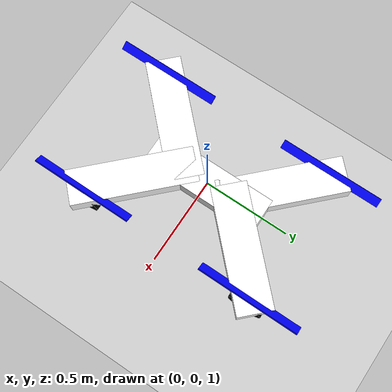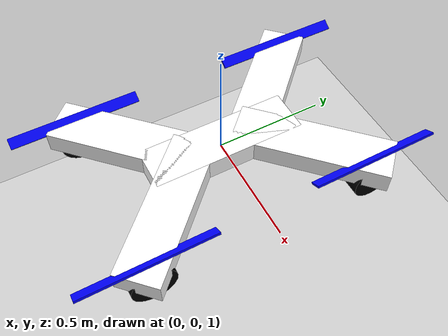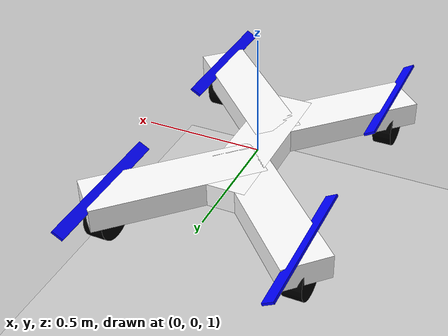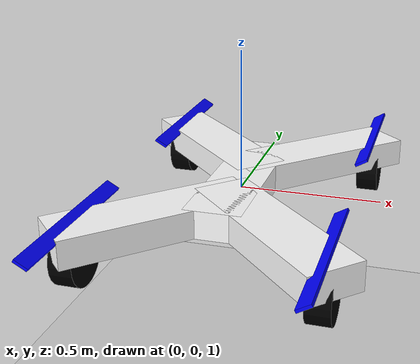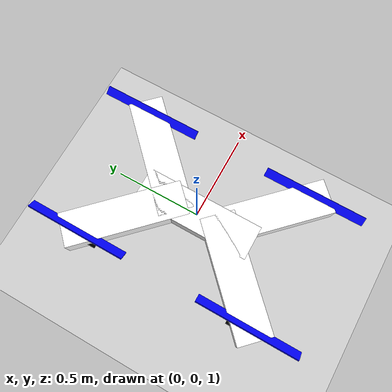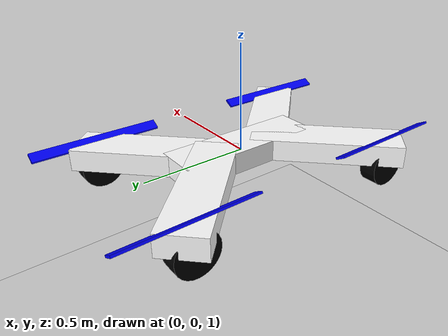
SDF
<?xml version="1.0" ?>
<sdf version="1.8">
  <world name="demo">

    <light name="sun" type="directional">
      <cast_shadows>true</cast_shadows>
      <pose>0 0 10 0 0 0</pose>
      <diffuse>0.8 0.8 0.8 1</diffuse>
      <specular>0.2 0.2 0.2 1</specular>
      <attenuation>
        <range>1000</range>
        <constant>0.9</constant>
        <linear>0.01</linear>
        <quadratic>0.001</quadratic>
      </attenuation>
      <direction>-0.5 0.1 -0.9</direction>
    </light>

    <model name="ground_plane">
      <static>true</static>
      <link name="link">
        <collision name="collision">
          <geometry>
            <plane>
              <normal>0 0 1</normal>
              <size>100 100</size>
            </plane>
          </geometry>
        </collision>
        <visual name="visual">
          <geometry>
            <plane>
              <normal>0 0 1</normal>
              <size>100 100</size>
            </plane>
          </geometry>
          <material>
            <ambient>0.8 0.8 0.8 1</ambient>
            <diffuse>0.8 0.8 0.8 1</diffuse>
            <specular>0.8 0.8 0.8 1</specular>
          </material>
        </visual>
      </link>
    </model>

    <model name="physics">
      <self_collide>true</self_collide>
      <pose>0 0 1 0 0 0</pose>
      <include merge="true">
        <uri>package://crispr/models/vehicle</uri>
      </include>

      <plugin
        filename="gz-sim-joint-state-publisher-system"
        name="gz::sim::systems::JointStatePublisher">
      </plugin>

      <plugin
        filename="gz-sim-pose-publisher-system"
        name="gz::sim::systems::PosePublisher">
        <publish_link_pose>true</publish_link_pose>
        <use_pose_vector_msg>true</use_pose_vector_msg>
        <static_publisher>true</static_publisher>
        <static_update_frequency>1</static_update_frequency>
      </plugin>

      <plugin
        filename="gz-sim-odometry-publisher-system"
        name="gz::sim::systems::OdometryPublisher">
        <odom_frame>vehicle/odom</odom_frame>
        <robot_base_frame>vehicle</robot_base_frame>
      </plugin>

    </model>
  </world>
</sdf>

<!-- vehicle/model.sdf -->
<sdf version='1.9'>
  <model name='physics'>
    <link name='base_link'>
      <inertial>
        <pose>0 0 0 0 0 0</pose>
        <mass>2.3999999999999999</mass>
        <inertia>
          <ixx>5.0489999999999986</ixx>
          <ixy>0</ixy>
          <ixz>0</ixz>
          <iyy>5.016</iyy>
          <iyz>0</iyz>
          <izz>5.0650000000000013</izz>
        </inertia>
      </inertial>
      <collision name='base_link_collision'>
        <pose>0 0 0 0 0 0</pose>
        <geometry>
          <box>
            <size>0.20000000000000001 0.69999999999999996 0.10000000000000001</size>
          </box>
        </geometry>
      </collision>
      <collision name='base_link_fixed_joint_lump__wing_backward_left_collision_1'>
        <pose>0.20000000000000001 -0.34999999999999998 0 0 0 0</pose>
        <geometry>
          <box>
            <size>0.20000000000000001 0.69999999999999996 0.10000000000000001</size>
          </box>
        </geometry>
      </collision>
      <collision name='base_link_fixed_joint_lump__wing_backward_right_collision_2'>
        <pose>-0.20000000000000001 -0.34999999999999998 0 0 0 0</pose>
        <geometry>
          <box>
            <size>0.20000000000000001 0.69999999999999996 0.10000000000000001</size>
          </box>
        </geometry>
      </collision>
      <collision name='base_link_fixed_joint_lump__wing_forward_left_collision_3'>
        <pose>0.20000000000000001 0.34999999999999998 0 0 0 0</pose>
        <geometry>
          <box>
            <size>0.20000000000000001 0.69999999999999996 0.10000000000000001</size>
          </box>
        </geometry>
      </collision>
      <collision name='base_link_fixed_joint_lump__wing_forward_right_collision_4'>
        <pose>-0.20000000000000001 0.34999999999999998 0 0 0 0</pose>
        <geometry>
          <box>
            <size>0.20000000000000001 0.69999999999999996 0.10000000000000001</size>
          </box>
        </geometry>
      </collision>
      <visual name='base_link_visual'>
        <pose>0 0 0 0 0 0</pose>
        <geometry>
          <box>
            <size>0.20000000000000001 0.69999999999999996 0.10000000000000001</size>
          </box>
        </geometry>
        <material>
          <diffuse>1 1 1 1</diffuse>
          <ambient>1 1 1 1</ambient>
        </material>
      </visual>
      <visual name='base_link_fixed_joint_lump__wing_backward_left_visual_1'>
        <pose>0.20000000000000001 -0.34999999999999998 0 0 0 -2.358185307179586</pose>
        <geometry>
          <box>
            <size>0.20000000000000001 0.69999999999999996 0.10000000000000001</size>
          </box>
        </geometry>
        <material>
          <diffuse>1 1 1 1</diffuse>
          <ambient>1 1 1 1</ambient>
        </material>
      </visual>
      <visual name='base_link_fixed_joint_lump__wing_backward_right_visual_2'>
        <pose>-0.20000000000000001 -0.34999999999999998 0 0 0 2.355</pose>
        <geometry>
          <box>
            <size>0.20000000000000001 0.69999999999999996 0.10000000000000001</size>
          </box>
        </geometry>
        <material>
          <diffuse>1 1 1 1</diffuse>
          <ambient>1 1 1 1</ambient>
        </material>
      </visual>
      <visual name='base_link_fixed_joint_lump__wing_forward_left_visual_3'>
        <pose>0.20000000000000001 0.34999999999999998 0 0 0 -0.78818530717958624</pose>
        <geometry>
          <box>
            <size>0.20000000000000001 0.69999999999999996 0.10000000000000001</size>
          </box>
        </geometry>
        <material>
          <diffuse>1 1 1 1</diffuse>
          <ambient>1 1 1 1</ambient>
        </material>
      </visual>
      <visual name='base_link_fixed_joint_lump__wing_forward_right_visual_4'>
        <pose>-0.20000000000000001 0.34999999999999998 0 0 0 0.78500000000000025</pose>
        <geometry>
          <box>
            <size>0.20000000000000001 0.69999999999999996 0.10000000000000001</size>
          </box>
        </geometry>
        <material>
          <diffuse>1 1 1 1</diffuse>
          <ambient>1 1 1 1</ambient>
        </material>
      </visual>
    </link>
    <joint name='propeller_backward_left_joint' type='revolute'>
      <pose relative_to='base_link'>0.40000000000000002 -0.52499999999999991 0.050000000000000003 0 0 0</pose>
      <parent>base_link</parent>
      <child>propeller_backward_left</child>
      <axis>
        <xyz>0 0 1</xyz>
        <limit>
          <lower>-inf</lower>
          <upper>inf</upper>
        </limit>
        <dynamics>
          <spring_reference>0</spring_reference>
          <spring_stiffness>0</spring_stiffness>
        </dynamics>
      </axis>
    </joint>
    <link name='propeller_backward_left'>
      <pose relative_to='propeller_backward_left_joint'>0 0 0 0 0 0</pose>
      <inertial>
        <pose>0 0 0 0 0 0</pose>
        <mass>0.01</mass>
        <inertia>
          <ixx>1</ixx>
          <ixy>0</ixy>
          <ixz>0</ixz>
          <iyy>1</iyy>
          <iyz>0</iyz>
          <izz>1</izz>
        </inertia>
      </inertial>
      <collision name='propeller_backward_left_collision'>
        <pose>0 0 0 0 0 0</pose>
        <geometry>
          <box>
            <size>0.050000000000000003 0.59999999999999998 0.01</size>
          </box>
        </geometry>
      </collision>
      <visual name='propeller_backward_left_visual'>
        <pose>0 0 0 3.1415926535897931 0.52492598692312675 3.1415926535897931</pose>
        <geometry>
          <box>
            <size>0.050000000000000003 0.59999999999999998 0.01</size>
          </box>
        </geometry>
        <material>
          <diffuse>0 0 1 1</diffuse>
          <ambient>0 0 1 1</ambient>
        </material>
      </visual>
    </link>
    <joint name='wheel_backward_left_joint' type='revolute'>
      <pose relative_to='base_link'>0.40000000000000002 -0.52499999999999991 -0.070000000000000007 0 0 0</pose>
      <parent>base_link</parent>
      <child>wheel_backward_left</child>
      <axis>
        <xyz>0 0 1</xyz>
        <limit>
          <lower>-inf</lower>
          <upper>inf</upper>
        </limit>
        <dynamics>
          <spring_reference>0</spring_reference>
          <spring_stiffness>0</spring_stiffness>
        </dynamics>
      </axis>
    </joint>
    <link name='wheel_backward_left'>
      <pose relative_to='wheel_backward_left_joint'>0 0 0 0 0 0</pose>
      <inertial>
        <pose>0 0 0 0 0 0</pose>
        <mass>0.01</mass>
        <inertia>
          <ixx>1</ixx>
          <ixy>0</ixy>
          <ixz>0</ixz>
          <iyy>1</iyy>
          <iyz>0</iyz>
          <izz>1</izz>
        </inertia>
      </inertial>
      <collision name='wheel_backward_left_collision'>
        <pose>0 0 0 0 0 0</pose>
        <geometry>
          <cylinder>
            <length>0.080000000000000002</length>
            <radius>0.10000000000000001</radius>
          </cylinder>
        </geometry>
      </collision>
      <visual name='wheel_backward_left_visual'>
        <pose>0 0 0 0 1.5707963267948966 0</pose>
        <geometry>
          <cylinder>
            <length>0.080000000000000002</length>
            <radius>0.10000000000000001</radius>
          </cylinder>
        </geometry>
        <material>
          <diffuse>0 0 0 1</diffuse>
          <ambient>0 0 0 1</ambient>
        </material>
      </visual>
    </link>
    <joint name='propeller_backward_right_joint' type='revolute'>
      <pose relative_to='base_link'>-0.40000000000000002 -0.52499999999999991 0.050000000000000003 0 0 0</pose>
      <parent>base_link</parent>
      <child>propeller_backward_right</child>
      <axis>
        <xyz>0 0 1</xyz>
        <limit>
          <lower>-inf</lower>
          <upper>inf</upper>
        </limit>
        <dynamics>
          <spring_reference>0</spring_reference>
          <spring_stiffness>0</spring_stiffness>
        </dynamics>
      </axis>
    </joint>
    <link name='propeller_backward_right'>
      <pose relative_to='propeller_backward_right_joint'>0 0 0 0 0 0</pose>
      <inertial>
        <pose>0 0 0 0 0 0</pose>
        <mass>0.01</mass>
        <inertia>
          <ixx>1</ixx>
          <ixy>0</ixy>
          <ixz>0</ixz>
          <iyy>1</iyy>
          <iyz>0</iyz>
          <izz>1</izz>
        </inertia>
      </inertial>
      <collision name='propeller_backward_right_collision'>
        <pose>0 0 0 0 0 0</pose>
        <geometry>
          <box>
            <size>0.050000000000000003 0.59999999999999998 0.01</size>
          </box>
        </geometry>
      </collision>
      <visual name='propeller_backward_right_visual'>
        <pose>0 0 0 0 0.52333333333333332 0</pose>
        <geometry>
          <box>
            <size>0.050000000000000003 0.59999999999999998 0.01</size>
          </box>
        </geometry>
        <material>
          <diffuse>0 0 1 1</diffuse>
          <ambient>0 0 1 1</ambient>
        </material>
      </visual>
    </link>
    <joint name='wheel_backward_right_joint' type='revolute'>
      <pose relative_to='base_link'>-0.40000000000000002 -0.52499999999999991 -0.070000000000000007 0 0 0</pose>
      <parent>base_link</parent>
      <child>wheel_backward_right</child>
      <axis>
        <xyz>0 0 1</xyz>
        <limit>
          <lower>-inf</lower>
          <upper>inf</upper>
        </limit>
        <dynamics>
          <spring_reference>0</spring_reference>
          <spring_stiffness>0</spring_stiffness>
        </dynamics>
      </axis>
    </joint>
    <link name='wheel_backward_right'>
      <pose relative_to='wheel_backward_right_joint'>0 0 0 0 0 0</pose>
      <inertial>
        <pose>0 0 0 0 0 0</pose>
        <mass>0.01</mass>
        <inertia>
          <ixx>1</ixx>
          <ixy>0</ixy>
          <ixz>0</ixz>
          <iyy>1</iyy>
          <iyz>0</iyz>
          <izz>1</izz>
        </inertia>
      </inertial>
      <collision name='wheel_backward_right_collision'>
        <pose>0 0 0 0 0 0</pose>
        <geometry>
          <cylinder>
            <length>0.080000000000000002</length>
            <radius>0.10000000000000001</radius>
          </cylinder>
        </geometry>
      </collision>
      <visual name='wheel_backward_right_visual'>
        <pose>0 0 0 0 1.5707963267948966 0</pose>
        <geometry>
          <cylinder>
            <length>0.080000000000000002</length>
            <radius>0.10000000000000001</radius>
          </cylinder>
        </geometry>
        <material>
          <diffuse>0 0 0 1</diffuse>
          <ambient>0 0 0 1</ambient>
        </material>
      </visual>
    </link>
    <joint name='propeller_forward_left_joint' type='revolute'>
      <pose relative_to='base_link'>0.40000000000000002 0.52499999999999991 0.050000000000000003 0 0 0</pose>
      <parent>base_link</parent>
      <child>propeller_forward_left</child>
      <axis>
        <xyz>0 0 1</xyz>
        <limit>
          <lower>-inf</lower>
          <upper>inf</upper>
        </limit>
        <dynamics>
          <spring_reference>0</spring_reference>
          <spring_stiffness>0</spring_stiffness>
        </dynamics>
      </axis>
    </joint>
    <link name='propeller_forward_left'>
      <pose relative_to='propeller_forward_left_joint'>0 0 0 0 0 0</pose>
      <inertial>
        <pose>0 0 0 0 0 0</pose>
        <mass>0.01</mass>
        <inertia>
          <ixx>1</ixx>
          <ixy>0</ixy>
          <ixz>0</ixz>
          <iyy>1</iyy>
          <iyz>0</iyz>
          <izz>1</izz>
        </inertia>
      </inertial>
      <collision name='propeller_forward_left_collision'>
        <pose>0 0 0 0 0 0</pose>
        <geometry>
          <box>
            <size>0.050000000000000003 0.59999999999999998 0.01</size>
          </box>
        </geometry>
      </collision>
      <visual name='propeller_forward_left_visual'>
        <pose>0 0 0 3.1415926535897931 0.52492598692312675 3.1415926535897931</pose>
        <geometry>
          <box>
            <size>0.050000000000000003 0.59999999999999998 0.01</size>
          </box>
        </geometry>
        <material>
          <diffuse>0 0 1 1</diffuse>
          <ambient>0 0 1 1</ambient>
        </material>
      </visual>
    </link>
    <joint name='wheel_forward_left_joint' type='revolute'>
      <pose relative_to='base_link'>0.40000000000000002 0.52499999999999991 -0.070000000000000007 0 0 0</pose>
      <parent>base_link</parent>
      <child>wheel_forward_left</child>
      <axis>
        <xyz>0 0 1</xyz>
        <limit>
          <lower>-inf</lower>
          <upper>inf</upper>
        </limit>
        <dynamics>
          <spring_reference>0</spring_reference>
          <spring_stiffness>0</spring_stiffness>
        </dynamics>
      </axis>
    </joint>
    <link name='wheel_forward_left'>
      <pose relative_to='wheel_forward_left_joint'>0 0 0 0 0 0</pose>
      <inertial>
        <pose>0 0 0 0 0 0</pose>
        <mass>0.01</mass>
        <inertia>
          <ixx>1</ixx>
          <ixy>0</ixy>
          <ixz>0</ixz>
          <iyy>1</iyy>
          <iyz>0</iyz>
          <izz>1</izz>
        </inertia>
      </inertial>
      <collision name='wheel_forward_left_collision'>
        <pose>0 0 0 0 0 0</pose>
        <geometry>
          <cylinder>
            <length>0.080000000000000002</length>
            <radius>0.10000000000000001</radius>
          </cylinder>
        </geometry>
      </collision>
      <visual name='wheel_forward_left_visual'>
        <pose>0 0 0 0 1.5707963267948966 0</pose>
        <geometry>
          <cylinder>
            <length>0.080000000000000002</length>
            <radius>0.10000000000000001</radius>
          </cylinder>
        </geometry>
        <material>
          <diffuse>0 0 0 1</diffuse>
          <ambient>0 0 0 1</ambient>
        </material>
      </visual>
    </link>
    <joint name='propeller_forward_right_joint' type='revolute'>
      <pose relative_to='base_link'>-0.40000000000000002 0.52499999999999991 0.050000000000000003 0 0 0</pose>
      <parent>base_link</parent>
      <child>propeller_forward_right</child>
      <axis>
        <xyz>0 0 1</xyz>
        <limit>
          <lower>-inf</lower>
          <upper>inf</upper>
        </limit>
        <dynamics>
          <spring_reference>0</spring_reference>
          <spring_stiffness>0</spring_stiffness>
        </dynamics>
      </axis>
    </joint>
    <link name='propeller_forward_right'>
      <pose relative_to='propeller_forward_right_joint'>0 0 0 0 0 0</pose>
      <inertial>
        <pose>0 0 0 0 0 0</pose>
        <mass>0.01</mass>
        <inertia>
          <ixx>1</ixx>
          <ixy>0</ixy>
          <ixz>0</ixz>
          <iyy>1</iyy>
          <iyz>0</iyz>
          <izz>1</izz>
        </inertia>
      </inertial>
      <collision name='propeller_forward_right_collision'>
        <pose>0 0 0 0 0 0</pose>
        <geometry>
          <box>
            <size>0.050000000000000003 0.59999999999999998 0.01</size>
          </box>
        </geometry>
      </collision>
      <visual name='propeller_forward_right_visual'>
        <pose>0 0 0 0 0.52333333333333332 0</pose>
        <geometry>
          <box>
            <size>0.050000000000000003 0.59999999999999998 0.01</size>
          </box>
        </geometry>
        <material>
          <diffuse>0 0 1 1</diffuse>
          <ambient>0 0 1 1</ambient>
        </material>
      </visual>
    </link>
    <joint name='wheel_forward_right_joint' type='revolute'>
      <pose relative_to='base_link'>-0.40000000000000002 0.52499999999999991 -0.070000000000000007 0 0 0</pose>
      <parent>base_link</parent>
      <child>wheel_forward_right</child>
      <axis>
        <xyz>0 0 1</xyz>
        <limit>
          <lower>-inf</lower>
          <upper>inf</upper>
        </limit>
        <dynamics>
          <spring_reference>0</spring_reference>
          <spring_stiffness>0</spring_stiffness>
        </dynamics>
      </axis>
    </joint>
    <link name='wheel_forward_right'>
      <pose relative_to='wheel_forward_right_joint'>0 0 0 0 0 0</pose>
      <inertial>
        <pose>0 0 0 0 0 0</pose>
        <mass>0.01</mass>
        <inertia>
          <ixx>1</ixx>
          <ixy>0</ixy>
          <ixz>0</ixz>
          <iyy>1</iyy>
          <iyz>0</iyz>
          <izz>1</izz>
        </inertia>
      </inertial>
      <collision name='wheel_forward_right_collision'>
        <pose>0 0 0 0 0 0</pose>
        <geometry>
          <cylinder>
            <length>0.080000000000000002</length>
            <radius>0.10000000000000001</radius>
          </cylinder>
        </geometry>
      </collision>
      <visual name='wheel_forward_right_visual'>
        <pose>0 0 0 0 1.5707963267948966 0</pose>
        <geometry>
          <cylinder>
            <length>0.080000000000000002</length>
            <radius>0.10000000000000001</radius>
          </cylinder>
        </geometry>
        <material>
          <diffuse>0 0 0 1</diffuse>
          <ambient>0 0 0 1</ambient>
        </material>
      </visual>
    </link>
    <frame name='wing_backward_left_joint' attached_to='base_link'>
      <pose>0.20000000000000001 -0.34999999999999998 0 0 0 0</pose>
    </frame>
    <frame name='wing_backward_left' attached_to='wing_backward_left_joint'>
      <pose>0 0 0 0 0 0</pose>
    </frame>
    <frame name='wing_backward_right_joint' attached_to='base_link'>
      <pose>-0.20000000000000001 -0.34999999999999998 0 0 0 0</pose>
    </frame>
    <frame name='wing_backward_right' attached_to='wing_backward_right_joint'>
      <pose>0 0 0 0 0 0</pose>
    </frame>
    <frame name='wing_forward_left_joint' attached_to='base_link'>
      <pose>0.20000000000000001 0.34999999999999998 0 0 0 0</pose>
    </frame>
    <frame name='wing_forward_left' attached_to='wing_forward_left_joint'>
      <pose>0 0 0 0 0 0</pose>
    </frame>
    <frame name='wing_forward_right_joint' attached_to='base_link'>
      <pose>-0.20000000000000001 0.34999999999999998 0 0 0 0</pose>
    </frame>
    <frame name='wing_forward_right' attached_to='wing_forward_right_joint'>
      <pose>0 0 0 0 0 0</pose>
    </frame>
  </model>
</sdf>
